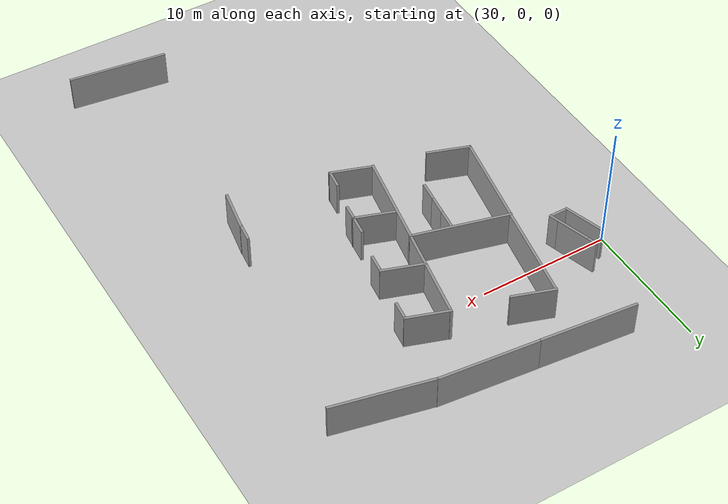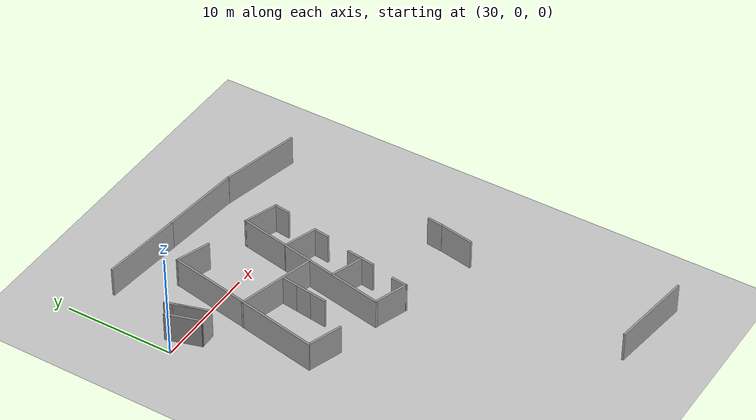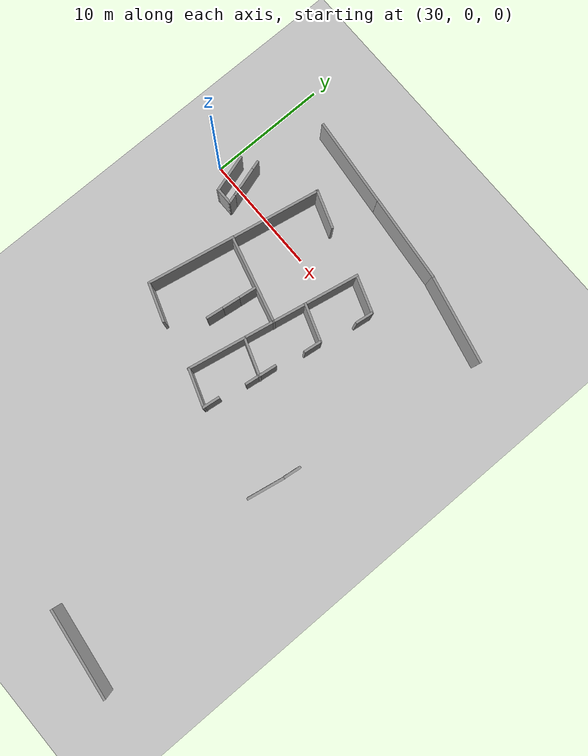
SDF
<sdf version="1.7">
 <world name="default">
  <model name="ground_plane">
   <static>1</static>
   <link name="link">
    <collision name="collision">
     <geometry><plane><normal>0 0 1</normal><size>100 100</size></plane></geometry>
     <surface>
      <contact><collide_bitmask>65535</collide_bitmask></contact>
      <friction><ode><mu>100</mu><mu2>50</mu2></ode></friction>
     </surface>
    </collision>
    <visual name="visual">
     <cast_shadows>0</cast_shadows>
     <geometry><plane><normal>0 0 1</normal><size>100 100</size></plane></geometry>
     <material>
      <script><uri>file://media/materials/scripts/gazebo.material</uri><name>Gazebo/Grey</name></script>
     </material>
    </visual>
   </link>
  </model>
  <model name="grey_wall_clone_3">
   <static>1</static>
   <link name="link">
    <pose>0 0 1.4 0 -0 0</pose>
    <collision name="collision"><geometry><box><size>7.5 0.2 2.8</size></box></geometry></collision>
    <visual name="visual">
     <cast_shadows>0</cast_shadows>
     <geometry><box><size>7.5 0.2 2.8</size></box></geometry>
     <material>
      <script>
       <uri>model://grey_wall/materials/scripts</uri>
       <uri>model://grey_wall/materials/textures</uri>
       <name>vrc/grey_wall</name>
      </script>
     </material>
    </visual>
   </link>
   <pose>36.9941 7.53296 0 0 0 -0.103387</pose>
  </model>
  <model name="grey_wall_1_clone_clone_1_clone_clone_0_clone_clone_6_clone_2_clone">
   <static>1</static>
   <link name="link">
    <pose>0 0 1.4 0 -0 0</pose>
    <collision name="collision"><geometry><box><size>7.5 0.2 2.8</size></box></geometry></collision>
    <visual name="visual">
     <cast_shadows>0</cast_shadows>
     <geometry><box><size>7.5 0.2 2.8</size></box></geometry>
     <material>
      <script>
       <uri>model://grey_wall/materials/scripts</uri>
       <uri>model://grey_wall/materials/textures</uri>
       <name>vrc/grey_wall</name>
      </script>
     </material>
    </visual>
   </link>
   <pose>52.2656 -31.6056 0 0 0 -0.130439</pose>
  </model>
  <model name="half_grey_wall_clone_clone_0_clone_clone_clone_clone_0_clone_2_clone_clone_0_clone_clone">
   <link name="link">
    <pose>0 0 1.4 0 -0 0</pose>
    <inertial>
     <mass>1</mass>
     <inertia><ixx>1</ixx><ixy>0</ixy><ixz>0</ixz><iyy>1</iyy><iyz>0</iyz><izz>1</izz></inertia>
    </inertial>
    <visual name="visual">
     <cast_shadows>0</cast_shadows>
     <geometry><box><size>3.3 0.2 2.8</size></box></geometry>
     <material>
      <script>
       <uri>model://grey_wall/materials/scripts</uri>
       <uri>model://grey_wall/materials/textures</uri>
       <name>vrc/grey_wall</name>
      </script>
      <shader type="pixel"><normal_map>__default__</normal_map></shader>
      <ambient>1 1 1 1</ambient>
      <diffuse>1 1 1 1</diffuse>
      <specular>0 0 0 1</specular>
      <emissive>0 0 0 1</emissive>
     </material>
    </visual>
    <collision name="collision">
     <geometry><box><size>3.3 0.2 2.8</size></box></geometry>
     <surface>
      <friction>
       <ode><mu>1</mu><mu2>1</mu2><fdir1>0 0 0</fdir1><slip1>0</slip1><slip2>0</slip2></ode>
       <torsional>
        <coefficient>1</coefficient>
        <patch_radius>0</patch_radius>
        <surface_radius>0</surface_radius>
        <use_patch_radius>1</use_patch_radius>
        <ode><slip>0</slip></ode>
       </torsional>
      </friction>
      <bounce><restitution_coefficient>0</restitution_coefficient><threshold>1e+06</threshold></bounce>
      <contact>
       <collide_without_contact>0</collide_without_contact>
       <collide_without_contact_bitmask>1</collide_without_contact_bitmask>
       <collide_bitmask>1</collide_bitmask>
       <ode>
        <soft_cfm>0</soft_cfm>
        <soft_erp>0.2</soft_erp>
        <kp>1e+13</kp>
        <kd>1</kd>
        <max_vel>0.01</max_vel>
        <min_depth>0</min_depth>
       </ode>
       <bullet>
        <split_impulse>1</split_impulse>
        <split_impulse_penetration_threshold>-0.01</split_impulse_penetration_threshold>
        <soft_cfm>0</soft_cfm>
        <soft_erp>0.2</soft_erp>
        <kp>1e+13</kp>
        <kd>1</kd>
       </bullet>
      </contact>
     </surface>
    </collision>
   </link>
   <static>1</static>
   <pose>31.6553 -0.22615 0 0 -0 1.86289</pose>
  </model>
  <model name="half_grey_wall_clone_clone_clone_0_clone_clone_0_clone_clone_0_clone_0_clone_11_clone_clone">
   <link name="link">
    <pose>0 0 1.4 0 -0 0</pose>
    <inertial>
     <mass>1</mass>
     <inertia><ixx>1</ixx><ixy>0</ixy><ixz>0</ixz><iyy>1</iyy><iyz>0</iyz><izz>1</izz></inertia>
    </inertial>
    <visual name="visual">
     <cast_shadows>0</cast_shadows>
     <geometry><box><size>1.5 0.2 2.8</size></box></geometry>
     <material>
      <script>
       <uri>model://grey_wall/materials/scripts</uri>
       <uri>model://grey_wall/materials/textures</uri>
       <name>vrc/grey_wall</name>
      </script>
      <shader type="pixel"><normal_map>__default__</normal_map></shader>
      <ambient>1 1 1 1</ambient>
      <diffuse>1 1 1 1</diffuse>
      <specular>0 0 0 1</specular>
      <emissive>0 0 0 1</emissive>
     </material>
    </visual>
    <collision name="collision">
     <geometry><box><size>1.5 0.2 2.8</size></box></geometry>
     <surface>
      <friction>
       <ode><mu>1</mu><mu2>1</mu2><fdir1>0 0 0</fdir1><slip1>0</slip1><slip2>0</slip2></ode>
       <torsional>
        <coefficient>1</coefficient>
        <patch_radius>0</patch_radius>
        <surface_radius>0</surface_radius>
        <use_patch_radius>1</use_patch_radius>
        <ode><slip>0</slip></ode>
       </torsional>
      </friction>
      <bounce><restitution_coefficient>0</restitution_coefficient><threshold>1e+06</threshold></bounce>
      <contact>
       <collide_without_contact>0</collide_without_contact>
       <collide_without_contact_bitmask>1</collide_without_contact_bitmask>
       <collide_bitmask>1</collide_bitmask>
       <ode>
        <soft_cfm>0</soft_cfm>
        <soft_erp>0.2</soft_erp>
        <kp>1e+13</kp>
        <kd>1</kd>
        <max_vel>0.01</max_vel>
        <min_depth>0</min_depth>
       </ode>
       <bullet>
        <split_impulse>1</split_impulse>
        <split_impulse_penetration_threshold>-0.01</split_impulse_penetration_threshold>
        <soft_cfm>0</soft_cfm>
        <soft_erp>0.2</soft_erp>
        <kp>1e+13</kp>
        <kd>1</kd>
       </bullet>
      </contact>
     </surface>
    </collision>
   </link>
   <static>1</static>
   <pose>32.7588 -1.69789 0 0 0 -3.13942</pose>
  </model>
  <model name="half_grey_wall_clone_clone_0_clone_clone_clone_clone_0_clone_2_clone_clone_0_clone_clone_0">
   <link name="link">
    <pose>0 0 1.4 0 -0 0</pose>
    <inertial>
     <mass>1</mass>
     <inertia><ixx>1</ixx><ixy>0</ixy><ixz>0</ixz><iyy>1</iyy><iyz>0</iyz><izz>1</izz></inertia>
    </inertial>
    <visual name="visual">
     <cast_shadows>0</cast_shadows>
     <geometry><box><size>3.3 0.2 2.8</size></box></geometry>
     <material>
      <script>
       <uri>model://grey_wall/materials/scripts</uri>
       <uri>model://grey_wall/materials/textures</uri>
       <name>vrc/grey_wall</name>
      </script>
      <shader type="pixel"><normal_map>__default__</normal_map></shader>
      <ambient>1 1 1 1</ambient>
      <diffuse>1 1 1 1</diffuse>
      <specular>0 0 0 1</specular>
      <emissive>0 0 0 1</emissive>
     </material>
    </visual>
    <collision name="collision">
     <geometry><box><size>3.3 0.2 2.8</size></box></geometry>
     <surface>
      <friction>
       <ode><mu>1</mu><mu2>1</mu2><fdir1>0 0 0</fdir1><slip1>0</slip1><slip2>0</slip2></ode>
       <torsional>
        <coefficient>1</coefficient>
        <patch_radius>0</patch_radius>
        <surface_radius>0</surface_radius>
        <use_patch_radius>1</use_patch_radius>
        <ode><slip>0</slip></ode>
       </torsional>
      </friction>
      <bounce><restitution_coefficient>0</restitution_coefficient><threshold>1e+06</threshold></bounce>
      <contact>
       <collide_without_contact>0</collide_without_contact>
       <collide_without_contact_bitmask>1</collide_without_contact_bitmask>
       <collide_bitmask>1</collide_bitmask>
       <ode>
        <soft_cfm>0</soft_cfm>
        <soft_erp>0.2</soft_erp>
        <kp>1e+13</kp>
        <kd>1</kd>
        <max_vel>0.01</max_vel>
        <min_depth>0</min_depth>
       </ode>
       <bullet>
        <split_impulse>1</split_impulse>
        <split_impulse_penetration_threshold>-0.01</split_impulse_penetration_threshold>
        <soft_cfm>0</soft_cfm>
        <soft_erp>0.2</soft_erp>
        <kp>1e+13</kp>
        <kd>1</kd>
       </bullet>
      </contact>
     </surface>
    </collision>
   </link>
   <static>1</static>
   <pose>32.9983 -0.18878 0 0 -0 1.86289</pose>
  </model>
  <model name="half_grey_wall_clone_clone_0_clone_clone_clone_clone_0_clone_2_clone_clone_0_clone_clone_0_clone">
   <link name="link">
    <pose>0 0 1.4 0 -0 0</pose>
    <inertial>
     <mass>1</mass>
     <inertia><ixx>1</ixx><ixy>0</ixy><ixz>0</ixz><iyy>1</iyy><iyz>0</iyz><izz>1</izz></inertia>
    </inertial>
    <visual name="visual">
     <cast_shadows>0</cast_shadows>
     <geometry><box><size>3.3 0.2 2.8</size></box></geometry>
     <material>
      <script>
       <uri>model://grey_wall/materials/scripts</uri>
       <uri>model://grey_wall/materials/textures</uri>
       <name>vrc/grey_wall</name>
      </script>
      <shader type="pixel"><normal_map>__default__</normal_map></shader>
      <ambient>1 1 1 1</ambient>
      <diffuse>1 1 1 1</diffuse>
      <specular>0 0 0 1</specular>
      <emissive>0 0 0 1</emissive>
     </material>
    </visual>
    <collision name="collision">
     <geometry><box><size>3.3 0.2 2.8</size></box></geometry>
     <surface>
      <friction>
       <ode><mu>1</mu><mu2>1</mu2><fdir1>0 0 0</fdir1><slip1>0</slip1><slip2>0</slip2></ode>
       <torsional>
        <coefficient>1</coefficient>
        <patch_radius>0</patch_radius>
        <surface_radius>0</surface_radius>
        <use_patch_radius>1</use_patch_radius>
        <ode><slip>0</slip></ode>
       </torsional>
      </friction>
      <bounce><restitution_coefficient>0</restitution_coefficient><threshold>1e+06</threshold></bounce>
      <contact>
       <collide_without_contact>0</collide_without_contact>
       <collide_without_contact_bitmask>1</collide_without_contact_bitmask>
       <collide_bitmask>1</collide_bitmask>
       <ode>
        <soft_cfm>0</soft_cfm>
        <soft_erp>0.2</soft_erp>
        <kp>1e+13</kp>
        <kd>1</kd>
        <max_vel>0.01</max_vel>
        <min_depth>0</min_depth>
       </ode>
       <bullet>
        <split_impulse>1</split_impulse>
        <split_impulse_penetration_threshold>-0.01</split_impulse_penetration_threshold>
        <soft_cfm>0</soft_cfm>
        <soft_erp>0.2</soft_erp>
        <kp>1e+13</kp>
        <kd>1</kd>
       </bullet>
      </contact>
     </surface>
    </collision>
   </link>
   <static>1</static>
   <pose>32.7831 0.549208 0 0 -0 1.86289</pose>
  </model>
  <model name="grey_wall_clone_3_clone">
   <static>1</static>
   <link name="link">
    <pose>0 0 1.4 0 -0 0</pose>
    <collision name="collision"><geometry><box><size>7.5 0.2 2.8</size></box></geometry></collision>
    <visual name="visual">
     <cast_shadows>0</cast_shadows>
     <geometry><box><size>7.5 0.2 2.8</size></box></geometry>
     <material>
      <script>
       <uri>model://grey_wall/materials/scripts</uri>
       <uri>model://grey_wall/materials/textures</uri>
       <name>vrc/grey_wall</name>
      </script>
     </material>
    </visual>
   </link>
   <pose>44.2979 6.78496 0 0 0 -0.103387</pose>
  </model>
  <model name="grey_wall_clone_3_clone_0_clone_1_clone_0">
   <static>1</static>
   <link name="link">
    <pose>0 0 1.4 0 -0 0</pose>
    <collision name="collision"><geometry><box><size>7.5 0.2 2.8</size></box></geometry></collision>
    <visual name="visual">
     <cast_shadows>0</cast_shadows>
     <geometry><box><size>7.5 0.2 2.8</size></box></geometry>
     <material>
      <script>
       <uri>model://grey_wall/materials/scripts</uri>
       <uri>model://grey_wall/materials/textures</uri>
       <name>vrc/grey_wall</name>
      </script>
     </material>
    </visual>
   </link>
   <pose>51.5916 5.56864 0 0 0 -0.221745</pose>
  </model>
  <model name="grey_wall_0_clone_clone_clone_0_clone_clone_2_clone_1_clone_2_clone_1">
   <static>1</static>
   <link name="link">
    <pose>0 0 1.4 0 -0 0</pose>
    <collision name="collision"><geometry><box><size>7.5 0.2 2.8</size></box></geometry></collision>
    <visual name="visual">
     <cast_shadows>0</cast_shadows>
     <geometry><box><size>7.5 0.2 2.8</size></box></geometry>
     <material>
      <script>
       <uri>model://grey_wall/materials/scripts</uri>
       <uri>model://grey_wall/materials/textures</uri>
       <name>vrc/grey_wall</name>
      </script>
     </material>
    </visual>
   </link>
   <pose>36.4342 0.405783 0 0 -0 1.38582</pose>
  </model>
  <model name="grey_wall_0_clone_clone_clone_0_clone_clone_2_clone_1_clone_2_clone_1_clone">
   <static>1</static>
   <link name="link">
    <pose>0 0 1.4 0 -0 0</pose>
    <collision name="collision"><geometry><box><size>7.5 0.2 2.8</size></box></geometry></collision>
    <visual name="visual">
     <cast_shadows>0</cast_shadows>
     <geometry><box><size>7.5 0.2 2.8</size></box></geometry>
     <material>
      <script>
       <uri>model://grey_wall/materials/scripts</uri>
       <uri>model://grey_wall/materials/textures</uri>
       <name>vrc/grey_wall</name>
      </script>
     </material>
    </visual>
   </link>
   <pose>35.0391 -6.87261 0 0 -0 1.38237</pose>
  </model>
  <model name="grey_wall_clone_3_clone_0_clone_1_clone_0_clone_clone_0">
   <static>1</static>
   <link name="link">
    <pose>0 0 1.4 0 -0 0</pose>
    <collision name="collision"><geometry><box><size>7.5 0.2 2.8</size></box></geometry></collision>
    <visual name="visual">
     <cast_shadows>0</cast_shadows>
     <geometry><box><size>7.5 0.2 2.8</size></box></geometry>
     <material>
      <script>
       <uri>model://grey_wall/materials/scripts</uri>
       <uri>model://grey_wall/materials/textures</uri>
       <name>vrc/grey_wall</name>
      </script>
     </material>
    </visual>
   </link>
   <pose>39.2484 -4.20958 0 0 0 -0.25602</pose>
  </model>
  <model name="half_grey_wall_clone_clone_0_clone_clone_clone_clone_0_clone_2_clone_clone_0_clone">
   <link name="link">
    <pose>0 0 1.4 0 -0 0</pose>
    <inertial>
     <mass>1</mass>
     <inertia><ixx>1</ixx><ixy>0</ixy><ixz>0</ixz><iyy>1</iyy><iyz>0</iyz><izz>1</izz></inertia>
    </inertial>
    <visual name="visual">
     <cast_shadows>0</cast_shadows>
     <geometry><box><size>3.3 0.2 2.8</size></box></geometry>
     <material>
      <script>
       <uri>model://grey_wall/materials/scripts</uri>
       <uri>model://grey_wall/materials/textures</uri>
       <name>vrc/grey_wall</name>
      </script>
      <shader type="pixel"><normal_map>__default__</normal_map></shader>
      <ambient>1 1 1 1</ambient>
      <diffuse>1 1 1 1</diffuse>
      <specular>0 0 0 1</specular>
      <emissive>0 0 0 1</emissive>
     </material>
    </visual>
    <collision name="collision">
     <geometry><box><size>3.3 0.2 2.8</size></box></geometry>
     <surface>
      <friction>
       <ode><mu>1</mu><mu2>1</mu2><fdir1>0 0 0</fdir1><slip1>0</slip1><slip2>0</slip2></ode>
       <torsional>
        <coefficient>1</coefficient>
        <patch_radius>0</patch_radius>
        <surface_radius>0</surface_radius>
        <use_patch_radius>1</use_patch_radius>
        <ode><slip>0</slip></ode>
       </torsional>
      </friction>
      <bounce><restitution_coefficient>0</restitution_coefficient><threshold>1e+06</threshold></bounce>
      <contact>
       <collide_without_contact>0</collide_without_contact>
       <collide_without_contact_bitmask>1</collide_without_contact_bitmask>
       <collide_bitmask>1</collide_bitmask>
       <ode>
        <soft_cfm>0</soft_cfm>
        <soft_erp>0.2</soft_erp>
        <kp>1e+13</kp>
        <kd>1</kd>
        <max_vel>0.01</max_vel>
        <min_depth>0</min_depth>
       </ode>
       <bullet>
        <split_impulse>1</split_impulse>
        <split_impulse_penetration_threshold>-0.01</split_impulse_penetration_threshold>
        <soft_cfm>0</soft_cfm>
        <soft_erp>0.2</soft_erp>
        <kp>1e+13</kp>
        <kd>1</kd>
       </bullet>
      </contact>
     </surface>
    </collision>
   </link>
   <static>1</static>
   <pose>38.5729 3.56946 -0 0 -0 2.80915</pose>
  </model>
  <model name="half_grey_wall_clone_clone_0_clone_clone_clone_clone_0_clone_2_clone_clone_0_clone_0">
   <link name="link">
    <pose>0 0 1.4 0 -0 0</pose>
    <inertial>
     <mass>1</mass>
     <inertia><ixx>1</ixx><ixy>0</ixy><ixz>0</ixz><iyy>1</iyy><iyz>0</iyz><izz>1</izz></inertia>
    </inertial>
    <visual name="visual">
     <cast_shadows>0</cast_shadows>
     <geometry><box><size>3.3 0.2 2.8</size></box></geometry>
     <material>
      <script>
       <uri>model://grey_wall/materials/scripts</uri>
       <uri>model://grey_wall/materials/textures</uri>
       <name>vrc/grey_wall</name>
      </script>
      <shader type="pixel"><normal_map>__default__</normal_map></shader>
      <ambient>1 1 1 1</ambient>
      <diffuse>1 1 1 1</diffuse>
      <specular>0 0 0 1</specular>
      <emissive>0 0 0 1</emissive>
     </material>
    </visual>
    <collision name="collision">
     <geometry><box><size>3.3 0.2 2.8</size></box></geometry>
     <surface>
      <friction>
       <ode><mu>1</mu><mu2>1</mu2><fdir1>0 0 0</fdir1><slip1>0</slip1><slip2>0</slip2></ode>
       <torsional>
        <coefficient>1</coefficient>
        <patch_radius>0</patch_radius>
        <surface_radius>0</surface_radius>
        <use_patch_radius>1</use_patch_radius>
        <ode><slip>0</slip></ode>
       </torsional>
      </friction>
      <bounce><restitution_coefficient>0</restitution_coefficient><threshold>1e+06</threshold></bounce>
      <contact>
       <collide_without_contact>0</collide_without_contact>
       <collide_without_contact_bitmask>1</collide_without_contact_bitmask>
       <collide_bitmask>1</collide_bitmask>
       <ode>
        <soft_cfm>0</soft_cfm>
        <soft_erp>0.2</soft_erp>
        <kp>1e+13</kp>
        <kd>1</kd>
        <max_vel>0.01</max_vel>
        <min_depth>0</min_depth>
       </ode>
       <bullet>
        <split_impulse>1</split_impulse>
        <split_impulse_penetration_threshold>-0.01</split_impulse_penetration_threshold>
        <soft_cfm>0</soft_cfm>
        <soft_erp>0.2</soft_erp>
        <kp>1e+13</kp>
        <kd>1</kd>
       </bullet>
      </contact>
     </surface>
    </collision>
   </link>
   <static>1</static>
   <pose>35.8668 -10.9804 -0 0 -0 2.80915</pose>
  </model>
  <model name="grey_wall_0_clone_clone_clone_0_clone_clone_2_clone_1_clone_2_clone_1_clone_0">
   <static>1</static>
   <link name="link">
    <pose>0 0 1.4 0 -0 0</pose>
    <collision name="collision"><geometry><box><size>7.5 0.2 2.8</size></box></geometry></collision>
    <visual name="visual">
     <cast_shadows>0</cast_shadows>
     <geometry><box><size>7.5 0.2 2.8</size></box></geometry>
     <material>
      <script>
       <uri>model://grey_wall/materials/scripts</uri>
       <uri>model://grey_wall/materials/textures</uri>
       <name>vrc/grey_wall</name>
      </script>
     </material>
    </visual>
   </link>
   <pose>43.4529 -1.55068 0 0 -0 1.38237</pose>
  </model>
  <model name="grey_wall_0_clone_clone_clone_0_clone_clone_2_clone_1_clone_2_clone_1_clone_clone">
   <static>1</static>
   <link name="link">
    <pose>0 0 1.4 0 -0 0</pose>
    <collision name="collision"><geometry><box><size>7.5 0.2 2.8</size></box></geometry></collision>
    <visual name="visual">
     <cast_shadows>0</cast_shadows>
     <geometry><box><size>7.5 0.2 2.8</size></box></geometry>
     <material>
      <script>
       <uri>model://grey_wall/materials/scripts</uri>
       <uri>model://grey_wall/materials/textures</uri>
       <name>vrc/grey_wall</name>
      </script>
     </material>
    </visual>
   </link>
   <pose>42.0729 -8.75312 0 0 -0 1.38237</pose>
  </model>
  <model name="half_grey_wall_clone_clone_0_clone_clone_clone_clone_0_clone_2_clone_clone_0_clone_clone_1">
   <link name="link">
    <pose>0 0 1.4 0 -0 0</pose>
    <inertial>
     <mass>1</mass>
     <inertia><ixx>1</ixx><ixy>0</ixy><ixz>0</ixz><iyy>1</iyy><iyz>0</iyz><izz>1</izz></inertia>
    </inertial>
    <visual name="visual">
     <cast_shadows>0</cast_shadows>
     <geometry><box><size>3.3 0.2 2.8</size></box></geometry>
     <material>
      <script>
       <uri>model://grey_wall/materials/scripts</uri>
       <uri>model://grey_wall/materials/textures</uri>
       <name>vrc/grey_wall</name>
      </script>
      <shader type="pixel"><normal_map>__default__</normal_map></shader>
      <ambient>1 1 1 1</ambient>
      <diffuse>1 1 1 1</diffuse>
      <specular>0 0 0 1</specular>
      <emissive>0 0 0 1</emissive>
     </material>
    </visual>
    <collision name="collision">
     <geometry><box><size>3.3 0.2 2.8</size></box></geometry>
     <surface>
      <friction>
       <ode><mu>1</mu><mu2>1</mu2><fdir1>0 0 0</fdir1><slip1>0</slip1><slip2>0</slip2></ode>
       <torsional>
        <coefficient>1</coefficient>
        <patch_radius>0</patch_radius>
        <surface_radius>0</surface_radius>
        <use_patch_radius>1</use_patch_radius>
        <ode><slip>0</slip></ode>
       </torsional>
      </friction>
      <bounce><restitution_coefficient>0</restitution_coefficient><threshold>1e+06</threshold></bounce>
      <contact>
       <collide_without_contact>0</collide_without_contact>
       <collide_without_contact_bitmask>1</collide_without_contact_bitmask>
       <collide_bitmask>1</collide_bitmask>
       <ode>
        <soft_cfm>0</soft_cfm>
        <soft_erp>0.2</soft_erp>
        <kp>1e+13</kp>
        <kd>1</kd>
        <max_vel>0.01</max_vel>
        <min_depth>0</min_depth>
       </ode>
       <bullet>
        <split_impulse>1</split_impulse>
        <split_impulse_penetration_threshold>-0.01</split_impulse_penetration_threshold>
        <soft_cfm>0</soft_cfm>
        <soft_erp>0.2</soft_erp>
        <kp>1e+13</kp>
        <kd>1</kd>
       </bullet>
      </contact>
     </surface>
    </collision>
   </link>
   <static>1</static>
   <pose>45.6067 1.51111 -0 0 -0 2.80915</pose>
  </model>
  <model name="half_grey_wall_clone_clone_0_clone_clone_clone_clone_0_clone_2_clone_clone_0_clone_clone_1_clone">
   <link name="link">
    <pose>0 0 1.4 0 -0 0</pose>
    <inertial>
     <mass>1</mass>
     <inertia><ixx>1</ixx><ixy>0</ixy><ixz>0</ixz><iyy>1</iyy><iyz>0</iyz><izz>1</izz></inertia>
    </inertial>
    <visual name="visual">
     <cast_shadows>0</cast_shadows>
     <geometry><box><size>3.3 0.2 2.8</size></box></geometry>
     <material>
      <script>
       <uri>model://grey_wall/materials/scripts</uri>
       <uri>model://grey_wall/materials/textures</uri>
       <name>vrc/grey_wall</name>
      </script>
      <shader type="pixel"><normal_map>__default__</normal_map></shader>
      <ambient>1 1 1 1</ambient>
      <diffuse>1 1 1 1</diffuse>
      <specular>0 0 0 1</specular>
      <emissive>0 0 0 1</emissive>
     </material>
    </visual>
    <collision name="collision">
     <geometry><box><size>3.3 0.2 2.8</size></box></geometry>
     <surface>
      <friction>
       <ode><mu>1</mu><mu2>1</mu2><fdir1>0 0 0</fdir1><slip1>0</slip1><slip2>0</slip2></ode>
       <torsional>
        <coefficient>1</coefficient>
        <patch_radius>0</patch_radius>
        <surface_radius>0</surface_radius>
        <use_patch_radius>1</use_patch_radius>
        <ode><slip>0</slip></ode>
       </torsional>
      </friction>
      <bounce><restitution_coefficient>0</restitution_coefficient><threshold>1e+06</threshold></bounce>
      <contact>
       <collide_without_contact>0</collide_without_contact>
       <collide_without_contact_bitmask>1</collide_without_contact_bitmask>
       <collide_bitmask>1</collide_bitmask>
       <ode>
        <soft_cfm>0</soft_cfm>
        <soft_erp>0.2</soft_erp>
        <kp>1e+13</kp>
        <kd>1</kd>
        <max_vel>0.01</max_vel>
        <min_depth>0</min_depth>
       </ode>
       <bullet>
        <split_impulse>1</split_impulse>
        <split_impulse_penetration_threshold>-0.01</split_impulse_penetration_threshold>
        <soft_cfm>0</soft_cfm>
        <soft_erp>0.2</soft_erp>
        <kp>1e+13</kp>
        <kd>1</kd>
       </bullet>
      </contact>
     </surface>
    </collision>
   </link>
   <static>1</static>
   <pose>42.8987 -12.8355 -0 0 -0 2.80915</pose>
  </model>
  <model name="half_grey_wall_clone_clone_0_clone_clone_clone_clone_0_clone_2_clone_clone_0_clone_clone_1_clone_1">
   <link name="link">
    <pose>0 0 1.4 0 -0 0</pose>
    <inertial>
     <mass>1</mass>
     <inertia><ixx>1</ixx><ixy>0</ixy><ixz>0</ixz><iyy>1</iyy><iyz>0</iyz><izz>1</izz></inertia>
    </inertial>
    <visual name="visual">
     <cast_shadows>0</cast_shadows>
     <geometry><box><size>3.3 0.2 2.8</size></box></geometry>
     <material>
      <script>
       <uri>model://grey_wall/materials/scripts</uri>
       <uri>model://grey_wall/materials/textures</uri>
       <name>vrc/grey_wall</name>
      </script>
      <shader type="pixel"><normal_map>__default__</normal_map></shader>
      <ambient>1 1 1 1</ambient>
      <diffuse>1 1 1 1</diffuse>
      <specular>0 0 0 1</specular>
      <emissive>0 0 0 1</emissive>
     </material>
    </visual>
    <collision name="collision">
     <geometry><box><size>3.3 0.2 2.8</size></box></geometry>
     <surface>
      <friction>
       <ode><mu>1</mu><mu2>1</mu2><fdir1>0 0 0</fdir1><slip1>0</slip1><slip2>0</slip2></ode>
       <torsional>
        <coefficient>1</coefficient>
        <patch_radius>0</patch_radius>
        <surface_radius>0</surface_radius>
        <use_patch_radius>1</use_patch_radius>
        <ode><slip>0</slip></ode>
       </torsional>
      </friction>
      <bounce><restitution_coefficient>0</restitution_coefficient><threshold>1e+06</threshold></bounce>
      <contact>
       <collide_without_contact>0</collide_without_contact>
       <collide_without_contact_bitmask>1</collide_without_contact_bitmask>
       <collide_bitmask>1</collide_bitmask>
       <ode>
        <soft_cfm>0</soft_cfm>
        <soft_erp>0.2</soft_erp>
        <kp>1e+13</kp>
        <kd>1</kd>
        <max_vel>0.01</max_vel>
        <min_depth>0</min_depth>
       </ode>
       <bullet>
        <split_impulse>1</split_impulse>
        <split_impulse_penetration_threshold>-0.01</split_impulse_penetration_threshold>
        <soft_cfm>0</soft_cfm>
        <soft_erp>0.2</soft_erp>
        <kp>1e+13</kp>
        <kd>1</kd>
       </bullet>
      </contact>
     </surface>
    </collision>
   </link>
   <static>1</static>
   <pose>44.7571 -2.91121 -0 0 -0 2.80915</pose>
  </model>
  <model name="half_grey_wall_clone_clone_0_clone_clone_clone_clone_0_clone_2_clone_clone_0_clone_clone_1_clone_0">
   <link name="link">
    <pose>0 0 1.4 0 -0 0</pose>
    <inertial>
     <mass>1</mass>
     <inertia><ixx>1</ixx><ixy>0</ixy><ixz>0</ixz><iyy>1</iyy><iyz>0</iyz><izz>1</izz></inertia>
    </inertial>
    <visual name="visual">
     <cast_shadows>0</cast_shadows>
     <geometry><box><size>3.3 0.2 2.8</size></box></geometry>
     <material>
      <script>
       <uri>model://grey_wall/materials/scripts</uri>
       <uri>model://grey_wall/materials/textures</uri>
       <name>vrc/grey_wall</name>
      </script>
      <shader type="pixel"><normal_map>__default__</normal_map></shader>
      <ambient>1 1 1 1</ambient>
      <diffuse>1 1 1 1</diffuse>
      <specular>0 0 0 1</specular>
      <emissive>0 0 0 1</emissive>
     </material>
    </visual>
    <collision name="collision">
     <geometry><box><size>3.3 0.2 2.8</size></box></geometry>
     <surface>
      <friction>
       <ode><mu>1</mu><mu2>1</mu2><fdir1>0 0 0</fdir1><slip1>0</slip1><slip2>0</slip2></ode>
       <torsional>
        <coefficient>1</coefficient>
        <patch_radius>0</patch_radius>
        <surface_radius>0</surface_radius>
        <use_patch_radius>1</use_patch_radius>
        <ode><slip>0</slip></ode>
       </torsional>
      </friction>
      <bounce><restitution_coefficient>0</restitution_coefficient><threshold>1e+06</threshold></bounce>
      <contact>
       <collide_without_contact>0</collide_without_contact>
       <collide_without_contact_bitmask>1</collide_without_contact_bitmask>
       <collide_bitmask>1</collide_bitmask>
       <ode>
        <soft_cfm>0</soft_cfm>
        <soft_erp>0.2</soft_erp>
        <kp>1e+13</kp>
        <kd>1</kd>
        <max_vel>0.01</max_vel>
        <min_depth>0</min_depth>
       </ode>
       <bullet>
        <split_impulse>1</split_impulse>
        <split_impulse_penetration_threshold>-0.01</split_impulse_penetration_threshold>
        <soft_cfm>0</soft_cfm>
        <soft_erp>0.2</soft_erp>
        <kp>1e+13</kp>
        <kd>1</kd>
       </bullet>
      </contact>
     </surface>
    </collision>
   </link>
   <static>1</static>
   <pose>43.7891 -8.1196 -0 0 -0 2.80915</pose>
  </model>
  <model name="half_grey_wall_clone_clone_clone_0_clone_clone_0_clone_clone_0_clone_0_clone_13_clone_clone_0_clone">
   <link name="link">
    <pose>0 0 1.4 0 -0 0</pose>
    <inertial>
     <mass>1</mass>
     <inertia><ixx>1</ixx><ixy>0</ixy><ixz>0</ixz><iyy>1</iyy><iyz>0</iyz><izz>1</izz></inertia>
    </inertial>
    <visual name="visual">
     <cast_shadows>0</cast_shadows>
     <geometry><box><size>1.5 0.2 2.8</size></box></geometry>
     <material>
      <script>
       <uri>model://grey_wall/materials/scripts</uri>
       <uri>model://grey_wall/materials/textures</uri>
       <name>vrc/grey_wall</name>
      </script>
      <shader type="pixel"><normal_map>__default__</normal_map></shader>
      <ambient>1 1 1 1</ambient>
      <diffuse>1 1 1 1</diffuse>
      <specular>0 0 0 1</specular>
      <emissive>0 0 0 1</emissive>
     </material>
    </visual>
    <collision name="collision">
     <geometry><box><size>1.5 0.2 2.8</size></box></geometry>
     <surface>
      <friction>
       <ode><mu>1</mu><mu2>1</mu2><fdir1>0 0 0</fdir1><slip1>0</slip1><slip2>0</slip2></ode>
       <torsional>
        <coefficient>1</coefficient>
        <patch_radius>0</patch_radius>
        <surface_radius>0</surface_radius>
        <use_patch_radius>1</use_patch_radius>
        <ode><slip>0</slip></ode>
       </torsional>
      </friction>
      <bounce><restitution_coefficient>0</restitution_coefficient><threshold>1e+06</threshold></bounce>
      <contact>
       <collide_without_contact>0</collide_without_contact>
       <collide_without_contact_bitmask>1</collide_without_contact_bitmask>
       <collide_bitmask>1</collide_bitmask>
       <ode>
        <soft_cfm>0</soft_cfm>
        <soft_erp>0.2</soft_erp>
        <kp>1e+13</kp>
        <kd>1</kd>
        <max_vel>0.01</max_vel>
        <min_depth>0</min_depth>
       </ode>
       <bullet>
        <split_impulse>1</split_impulse>
        <split_impulse_penetration_threshold>-0.01</split_impulse_penetration_threshold>
        <soft_cfm>0</soft_cfm>
        <soft_erp>0.2</soft_erp>
        <kp>1e+13</kp>
        <kd>1</kd>
       </bullet>
      </contact>
     </surface>
    </collision>
   </link>
   <static>1</static>
   <pose>46.976 0.302503 0 0 -0 1.43779</pose>
  </model>
  <model name="half_grey_wall_clone_clone_clone_0_clone_clone_0_clone_clone_0_clone_0_clone_13_clone_clone_0_clone_clone">
   <link name="link">
    <pose>0 0 1.4 0 -0 0</pose>
    <inertial>
     <mass>1</mass>
     <inertia><ixx>1</ixx><ixy>0</ixy><ixz>0</ixz><iyy>1</iyy><iyz>0</iyz><izz>1</izz></inertia>
    </inertial>
    <visual name="visual">
     <cast_shadows>0</cast_shadows>
     <geometry><box><size>1.5 0.2 2.8</size></box></geometry>
     <material>
      <script>
       <uri>model://grey_wall/materials/scripts</uri>
       <uri>model://grey_wall/materials/textures</uri>
       <name>vrc/grey_wall</name>
      </script>
      <shader type="pixel"><normal_map>__default__</normal_map></shader>
      <ambient>1 1 1 1</ambient>
      <diffuse>1 1 1 1</diffuse>
      <specular>0 0 0 1</specular>
      <emissive>0 0 0 1</emissive>
     </material>
    </visual>
    <collision name="collision">
     <geometry><box><size>1.5 0.2 2.8</size></box></geometry>
     <surface>
      <friction>
       <ode><mu>1</mu><mu2>1</mu2><fdir1>0 0 0</fdir1><slip1>0</slip1><slip2>0</slip2></ode>
       <torsional>
        <coefficient>1</coefficient>
        <patch_radius>0</patch_radius>
        <surface_radius>0</surface_radius>
        <use_patch_radius>1</use_patch_radius>
        <ode><slip>0</slip></ode>
       </torsional>
      </friction>
      <bounce><restitution_coefficient>0</restitution_coefficient><threshold>1e+06</threshold></bounce>
      <contact>
       <collide_without_contact>0</collide_without_contact>
       <collide_without_contact_bitmask>1</collide_without_contact_bitmask>
       <collide_bitmask>1</collide_bitmask>
       <ode>
        <soft_cfm>0</soft_cfm>
        <soft_erp>0.2</soft_erp>
        <kp>1e+13</kp>
        <kd>1</kd>
        <max_vel>0.01</max_vel>
        <min_depth>0</min_depth>
       </ode>
       <bullet>
        <split_impulse>1</split_impulse>
        <split_impulse_penetration_threshold>-0.01</split_impulse_penetration_threshold>
        <soft_cfm>0</soft_cfm>
        <soft_erp>0.2</soft_erp>
        <kp>1e+13</kp>
        <kd>1</kd>
       </bullet>
      </contact>
     </surface>
    </collision>
   </link>
   <static>1</static>
   <pose>46.1329 -4.12229 0 0 -0 1.4396</pose>
  </model>
  <model name="half_grey_wall_clone_clone_clone_0_clone_clone_0_clone_clone_0_clone_0_clone_13_clone_clone_0_clone_clone_0">
   <link name="link">
    <pose>0 0 1.4 0 -0 0</pose>
    <inertial>
     <mass>1</mass>
     <inertia><ixx>1</ixx><ixy>0</ixy><ixz>0</ixz><iyy>1</iyy><iyz>0</iyz><izz>1</izz></inertia>
    </inertial>
    <visual name="visual">
     <cast_shadows>0</cast_shadows>
     <geometry><box><size>1.5 0.2 2.8</size></box></geometry>
     <material>
      <script>
       <uri>model://grey_wall/materials/scripts</uri>
       <uri>model://grey_wall/materials/textures</uri>
       <name>vrc/grey_wall</name>
      </script>
      <shader type="pixel"><normal_map>__default__</normal_map></shader>
      <ambient>1 1 1 1</ambient>
      <diffuse>1 1 1 1</diffuse>
      <specular>0 0 0 1</specular>
      <emissive>0 0 0 1</emissive>
     </material>
    </visual>
    <collision name="collision">
     <geometry><box><size>1.5 0.2 2.8</size></box></geometry>
     <surface>
      <friction>
       <ode><mu>1</mu><mu2>1</mu2><fdir1>0 0 0</fdir1><slip1>0</slip1><slip2>0</slip2></ode>
       <torsional>
        <coefficient>1</coefficient>
        <patch_radius>0</patch_radius>
        <surface_radius>0</surface_radius>
        <use_patch_radius>1</use_patch_radius>
        <ode><slip>0</slip></ode>
       </torsional>
      </friction>
      <bounce><restitution_coefficient>0</restitution_coefficient><threshold>1e+06</threshold></bounce>
      <contact>
       <collide_without_contact>0</collide_without_contact>
       <collide_without_contact_bitmask>1</collide_without_contact_bitmask>
       <collide_bitmask>1</collide_bitmask>
       <ode>
        <soft_cfm>0</soft_cfm>
        <soft_erp>0.2</soft_erp>
        <kp>1e+13</kp>
        <kd>1</kd>
        <max_vel>0.01</max_vel>
        <min_depth>0</min_depth>
       </ode>
       <bullet>
        <split_impulse>1</split_impulse>
        <split_impulse_penetration_threshold>-0.01</split_impulse_penetration_threshold>
        <soft_cfm>0</soft_cfm>
        <soft_erp>0.2</soft_erp>
        <kp>1e+13</kp>
        <kd>1</kd>
       </bullet>
      </contact>
     </surface>
    </collision>
   </link>
   <static>1</static>
   <pose>45.3314 -7.87837 0 0 -0 1.4396</pose>
  </model>
  <model name="half_grey_wall_clone_clone_clone_0_clone_clone_0_clone_clone_0_clone_0_clone_13_clone_clone_0_clone_clone_1">
   <link name="link">
    <pose>0 0 1.4 0 -0 0</pose>
    <inertial>
     <mass>1</mass>
     <inertia><ixx>1</ixx><ixy>0</ixy><ixz>0</ixz><iyy>1</iyy><iyz>0</iyz><izz>1</izz></inertia>
    </inertial>
    <visual name="visual">
     <cast_shadows>0</cast_shadows>
     <geometry><box><size>1.5 0.2 2.8</size></box></geometry>
     <material>
      <script>
       <uri>model://grey_wall/materials/scripts</uri>
       <uri>model://grey_wall/materials/textures</uri>
       <name>vrc/grey_wall</name>
      </script>
      <shader type="pixel"><normal_map>__default__</normal_map></shader>
      <ambient>1 1 1 1</ambient>
      <diffuse>1 1 1 1</diffuse>
      <specular>0 0 0 1</specular>
      <emissive>0 0 0 1</emissive>
     </material>
    </visual>
    <collision name="collision">
     <geometry><box><size>1.5 0.2 2.8</size></box></geometry>
     <surface>
      <friction>
       <ode><mu>1</mu><mu2>1</mu2><fdir1>0 0 0</fdir1><slip1>0</slip1><slip2>0</slip2></ode>
       <torsional>
        <coefficient>1</coefficient>
        <patch_radius>0</patch_radius>
        <surface_radius>0</surface_radius>
        <use_patch_radius>1</use_patch_radius>
        <ode><slip>0</slip></ode>
       </torsional>
      </friction>
      <bounce><restitution_coefficient>0</restitution_coefficient><threshold>1e+06</threshold></bounce>
      <contact>
       <collide_without_contact>0</collide_without_contact>
       <collide_without_contact_bitmask>1</collide_without_contact_bitmask>
       <collide_bitmask>1</collide_bitmask>
       <ode>
        <soft_cfm>0</soft_cfm>
        <soft_erp>0.2</soft_erp>
        <kp>1e+13</kp>
        <kd>1</kd>
        <max_vel>0.01</max_vel>
        <min_depth>0</min_depth>
       </ode>
       <bullet>
        <split_impulse>1</split_impulse>
        <split_impulse_penetration_threshold>-0.01</split_impulse_penetration_threshold>
        <soft_cfm>0</soft_cfm>
        <soft_erp>0.2</soft_erp>
        <kp>1e+13</kp>
        <kd>1</kd>
       </bullet>
      </contact>
     </surface>
    </collision>
   </link>
   <static>1</static>
   <pose>45.1597 -9.08379 0 0 -0 1.4396</pose>
  </model>
  <model name="half_grey_wall_clone_clone_clone_0_clone_clone_0_clone_clone_0_clone_0_clone_13_clone_clone_0_clone_clone_2">
   <link name="link">
    <pose>0 0 1.4 0 -0 0</pose>
    <inertial>
     <mass>1</mass>
     <inertia><ixx>1</ixx><ixy>0</ixy><ixz>0</ixz><iyy>1</iyy><iyz>0</iyz><izz>1</izz></inertia>
    </inertial>
    <visual name="visual">
     <cast_shadows>0</cast_shadows>
     <geometry><box><size>1.5 0.2 2.8</size></box></geometry>
     <material>
      <script>
       <uri>model://grey_wall/materials/scripts</uri>
       <uri>model://grey_wall/materials/textures</uri>
       <name>vrc/grey_wall</name>
      </script>
      <shader type="pixel"><normal_map>__default__</normal_map></shader>
      <ambient>1 1 1 1</ambient>
      <diffuse>1 1 1 1</diffuse>
      <specular>0 0 0 1</specular>
      <emissive>0 0 0 1</emissive>
     </material>
    </visual>
    <collision name="collision">
     <geometry><box><size>1.5 0.2 2.8</size></box></geometry>
     <surface>
      <friction>
       <ode><mu>1</mu><mu2>1</mu2><fdir1>0 0 0</fdir1><slip1>0</slip1><slip2>0</slip2></ode>
       <torsional>
        <coefficient>1</coefficient>
        <patch_radius>0</patch_radius>
        <surface_radius>0</surface_radius>
        <use_patch_radius>1</use_patch_radius>
        <ode><slip>0</slip></ode>
       </torsional>
      </friction>
      <bounce><restitution_coefficient>0</restitution_coefficient><threshold>1e+06</threshold></bounce>
      <contact>
       <collide_without_contact>0</collide_without_contact>
       <collide_without_contact_bitmask>1</collide_without_contact_bitmask>
       <collide_bitmask>1</collide_bitmask>
       <ode>
        <soft_cfm>0</soft_cfm>
        <soft_erp>0.2</soft_erp>
        <kp>1e+13</kp>
        <kd>1</kd>
        <max_vel>0.01</max_vel>
        <min_depth>0</min_depth>
       </ode>
       <bullet>
        <split_impulse>1</split_impulse>
        <split_impulse_penetration_threshold>-0.01</split_impulse_penetration_threshold>
        <soft_cfm>0</soft_cfm>
        <soft_erp>0.2</soft_erp>
        <kp>1e+13</kp>
        <kd>1</kd>
       </bullet>
      </contact>
     </surface>
    </collision>
   </link>
   <static>1</static>
   <pose>44.4388 -12.6816 0 0 -0 1.4396</pose>
  </model>
  <model name="half_grey_wall_clone_clone_clone_0_clone_clone_0_clone_clone_0_clone_0_clone_13_clone_clone_0_clone_clone_0_clone">
   <link name="link">
    <pose>0 0 1.4 0 -0 0</pose>
    <inertial>
     <mass>1</mass>
     <inertia><ixx>1</ixx><ixy>0</ixy><ixz>0</ixz><iyy>1</iyy><iyz>0</iyz><izz>1</izz></inertia>
    </inertial>
    <visual name="visual">
     <cast_shadows>0</cast_shadows>
     <geometry><box><size>1.5 0.2 2.8</size></box></geometry>
     <material>
      <script>
       <uri>model://grey_wall/materials/scripts</uri>
       <uri>model://grey_wall/materials/textures</uri>
       <name>vrc/grey_wall</name>
      </script>
      <shader type="pixel"><normal_map>__default__</normal_map></shader>
      <ambient>1 1 1 1</ambient>
      <diffuse>1 1 1 1</diffuse>
      <specular>0 0 0 1</specular>
      <emissive>0 0 0 1</emissive>
     </material>
    </visual>
    <collision name="collision">
     <geometry><box><size>1.5 0.2 2.8</size></box></geometry>
     <surface>
      <friction>
       <ode><mu>1</mu><mu2>1</mu2><fdir1>0 0 0</fdir1><slip1>0</slip1><slip2>0</slip2></ode>
       <torsional>
        <coefficient>1</coefficient>
        <patch_radius>0</patch_radius>
        <surface_radius>0</surface_radius>
        <use_patch_radius>1</use_patch_radius>
        <ode><slip>0</slip></ode>
       </torsional>
      </friction>
      <bounce><restitution_coefficient>0</restitution_coefficient><threshold>1e+06</threshold></bounce>
      <contact>
       <collide_without_contact>0</collide_without_contact>
       <collide_without_contact_bitmask>1</collide_without_contact_bitmask>
       <collide_bitmask>1</collide_bitmask>
       <ode>
        <soft_cfm>0</soft_cfm>
        <soft_erp>0.2</soft_erp>
        <kp>1e+13</kp>
        <kd>1</kd>
        <max_vel>0.01</max_vel>
        <min_depth>0</min_depth>
       </ode>
       <bullet>
        <split_impulse>1</split_impulse>
        <split_impulse_penetration_threshold>-0.01</split_impulse_penetration_threshold>
        <soft_cfm>0</soft_cfm>
        <soft_erp>0.2</soft_erp>
        <kp>1e+13</kp>
        <kd>1</kd>
       </bullet>
      </contact>
     </surface>
    </collision>
   </link>
   <static>1</static>
   <pose>39.7696 -5.20035 0 0 -0 1.4396</pose>
  </model>
  <model name="half_grey_wall_clone_clone_clone_0_clone_clone_0_clone_clone_0_clone_0_clone_13_clone_clone_0_clone_clone_0_clone_0">
   <link name="link">
    <pose>0 0 1.4 0 -0 0</pose>
    <inertial>
     <mass>1</mass>
     <inertia><ixx>1</ixx><ixy>0</ixy><ixz>0</ixz><iyy>1</iyy><iyz>0</iyz><izz>1</izz></inertia>
    </inertial>
    <visual name="visual">
     <cast_shadows>0</cast_shadows>
     <geometry><box><size>1.5 0.2 2.8</size></box></geometry>
     <material>
      <script>
       <uri>model://grey_wall/materials/scripts</uri>
       <uri>model://grey_wall/materials/textures</uri>
       <name>vrc/grey_wall</name>
      </script>
      <shader type="pixel"><normal_map>__default__</normal_map></shader>
      <ambient>1 1 1 1</ambient>
      <diffuse>1 1 1 1</diffuse>
      <specular>0 0 0 1</specular>
      <emissive>0 0 0 1</emissive>
     </material>
    </visual>
    <collision name="collision">
     <geometry><box><size>1.5 0.2 2.8</size></box></geometry>
     <surface>
      <friction>
       <ode><mu>1</mu><mu2>1</mu2><fdir1>0 0 0</fdir1><slip1>0</slip1><slip2>0</slip2></ode>
       <torsional>
        <coefficient>1</coefficient>
        <patch_radius>0</patch_radius>
        <surface_radius>0</surface_radius>
        <use_patch_radius>1</use_patch_radius>
        <ode><slip>0</slip></ode>
       </torsional>
      </friction>
      <bounce><restitution_coefficient>0</restitution_coefficient><threshold>1e+06</threshold></bounce>
      <contact>
       <collide_without_contact>0</collide_without_contact>
       <collide_without_contact_bitmask>1</collide_without_contact_bitmask>
       <collide_bitmask>1</collide_bitmask>
       <ode>
        <soft_cfm>0</soft_cfm>
        <soft_erp>0.2</soft_erp>
        <kp>1e+13</kp>
        <kd>1</kd>
        <max_vel>0.01</max_vel>
        <min_depth>0</min_depth>
       </ode>
       <bullet>
        <split_impulse>1</split_impulse>
        <split_impulse_penetration_threshold>-0.01</split_impulse_penetration_threshold>
        <soft_cfm>0</soft_cfm>
        <soft_erp>0.2</soft_erp>
        <kp>1e+13</kp>
        <kd>1</kd>
       </bullet>
      </contact>
     </surface>
    </collision>
   </link>
   <static>1</static>
   <pose>39.5765 -6.65427 0 0 -0 1.4396</pose>
  </model>
  <model name="half_grey_wall_clone_clone_clone_0_clone_clone_0_clone_clone_0_clone_0_clone_13_clone_clone_0_clone_clone_0_clone_1">
   <link name="link">
    <pose>0 0 1.4 0 -0 0</pose>
    <inertial>
     <mass>1</mass>
     <inertia><ixx>1</ixx><ixy>0</ixy><ixz>0</ixz><iyy>1</iyy><iyz>0</iyz><izz>1</izz></inertia>
    </inertial>
    <visual name="visual">
     <cast_shadows>0</cast_shadows>
     <geometry><box><size>1.5 0.2 2.8</size></box></geometry>
     <material>
      <script>
       <uri>model://grey_wall/materials/scripts</uri>
       <uri>model://grey_wall/materials/textures</uri>
       <name>vrc/grey_wall</name>
      </script>
      <shader type="pixel"><normal_map>__default__</normal_map></shader>
      <ambient>1 1 1 1</ambient>
      <diffuse>1 1 1 1</diffuse>
      <specular>0 0 0 1</specular>
      <emissive>0 0 0 1</emissive>
     </material>
    </visual>
    <collision name="collision">
     <geometry><box><size>1.5 0.2 2.8</size></box></geometry>
     <surface>
      <friction>
       <ode><mu>1</mu><mu2>1</mu2><fdir1>0 0 0</fdir1><slip1>0</slip1><slip2>0</slip2></ode>
       <torsional>
        <coefficient>1</coefficient>
        <patch_radius>0</patch_radius>
        <surface_radius>0</surface_radius>
        <use_patch_radius>1</use_patch_radius>
        <ode><slip>0</slip></ode>
       </torsional>
      </friction>
      <bounce><restitution_coefficient>0</restitution_coefficient><threshold>1e+06</threshold></bounce>
      <contact>
       <collide_without_contact>0</collide_without_contact>
       <collide_without_contact_bitmask>1</collide_without_contact_bitmask>
       <collide_bitmask>1</collide_bitmask>
       <ode>
        <soft_cfm>0</soft_cfm>
        <soft_erp>0.2</soft_erp>
        <kp>1e+13</kp>
        <kd>1</kd>
        <max_vel>0.01</max_vel>
        <min_depth>0</min_depth>
       </ode>
       <bullet>
        <split_impulse>1</split_impulse>
        <split_impulse_penetration_threshold>-0.01</split_impulse_penetration_threshold>
        <soft_cfm>0</soft_cfm>
        <soft_erp>0.2</soft_erp>
        <kp>1e+13</kp>
        <kd>1</kd>
       </bullet>
      </contact>
     </surface>
    </collision>
   </link>
   <static>1</static>
   <pose>39.3846 -8.10741 0 0 -0 1.4396</pose>
  </model>
  <model name="half_grey_wall_clone_clone_0_clone_clone_clone_clone_0_clone_0_clone_clone_1_clone_clone_clone_4_clone_clone_clone">
   <link name="link">
    <pose>0 0 1.4 0 -0 0</pose>
    <inertial>
     <mass>1</mass>
     <inertia><ixx>1</ixx><ixy>0</ixy><ixz>0</ixz><iyy>1</iyy><iyz>0</iyz><izz>1</izz></inertia>
    </inertial>
    <visual name="visual">
     <cast_shadows>0</cast_shadows>
     <geometry><box><size>3.3 0.2 2.8</size></box></geometry>
     <material>
      <script>
       <uri>model://grey_wall/materials/scripts</uri>
       <uri>model://grey_wall/materials/textures</uri>
       <name>vrc/grey_wall</name>
      </script>
      <shader type="pixel"><normal_map>__default__</normal_map></shader>
      <ambient>1 1 1 1</ambient>
      <diffuse>1 1 1 1</diffuse>
      <specular>0 0 0 1</specular>
      <emissive>0 0 0 1</emissive>
     </material>
    </visual>
    <collision name="collision">
     <geometry><box><size>3.3 0.2 2.8</size></box></geometry>
     <surface>
      <friction>
       <ode><mu>1</mu><mu2>1</mu2><fdir1>0 0 0</fdir1><slip1>0</slip1><slip2>0</slip2></ode>
       <torsional>
        <coefficient>1</coefficient>
        <patch_radius>0</patch_radius>
        <surface_radius>0</surface_radius>
        <use_patch_radius>1</use_patch_radius>
        <ode><slip>0</slip></ode>
       </torsional>
      </friction>
      <bounce><restitution_coefficient>0</restitution_coefficient><threshold>1e+06</threshold></bounce>
      <contact>
       <collide_without_contact>0</collide_without_contact>
       <collide_without_contact_bitmask>1</collide_without_contact_bitmask>
       <collide_bitmask>1</collide_bitmask>
       <ode>
        <soft_cfm>0</soft_cfm>
        <soft_erp>0.2</soft_erp>
        <kp>1e+13</kp>
        <kd>1</kd>
        <max_vel>0.01</max_vel>
        <min_depth>0</min_depth>
       </ode>
       <bullet>
        <split_impulse>1</split_impulse>
        <split_impulse_penetration_threshold>-0.01</split_impulse_penetration_threshold>
        <soft_cfm>0</soft_cfm>
        <soft_erp>0.2</soft_erp>
        <kp>1e+13</kp>
        <kd>1</kd>
       </bullet>
      </contact>
     </surface>
    </collision>
   </link>
   <static>1</static>
   <pose>51.9688 -13.5855 0 0 0 -1.75358</pose>
  </model>
  <model name="half_grey_wall_clone_clone_clone_0_clone_clone_0_clone_clone_0_clone_0_clone_13_clone_clone_0_clone_clone_clone_0">
   <link name="link">
    <pose>0 0 1.4 0 -0 0</pose>
    <inertial>
     <mass>1</mass>
     <inertia><ixx>1</ixx><ixy>0</ixy><ixz>0</ixz><iyy>1</iyy><iyz>0</iyz><izz>1</izz></inertia>
    </inertial>
    <visual name="visual">
     <cast_shadows>0</cast_shadows>
     <geometry><box><size>1.5 0.2 2.8</size></box></geometry>
     <material>
      <script>
       <uri>model://grey_wall/materials/scripts</uri>
       <uri>model://grey_wall/materials/textures</uri>
       <name>vrc/grey_wall</name>
      </script>
      <shader type="pixel"><normal_map>__default__</normal_map></shader>
      <ambient>1 1 1 1</ambient>
      <diffuse>1 1 1 1</diffuse>
      <specular>0 0 0 1</specular>
      <emissive>0 0 0 1</emissive>
     </material>
    </visual>
    <collision name="collision">
     <geometry><box><size>1.5 0.2 2.8</size></box></geometry>
     <surface>
      <friction>
       <ode><mu>1</mu><mu2>1</mu2><fdir1>0 0 0</fdir1><slip1>0</slip1><slip2>0</slip2></ode>
       <torsional>
        <coefficient>1</coefficient>
        <patch_radius>0</patch_radius>
        <surface_radius>0</surface_radius>
        <use_patch_radius>1</use_patch_radius>
        <ode><slip>0</slip></ode>
       </torsional>
      </friction>
      <bounce><restitution_coefficient>0</restitution_coefficient><threshold>1e+06</threshold></bounce>
      <contact>
       <collide_without_contact>0</collide_without_contact>
       <collide_without_contact_bitmask>1</collide_without_contact_bitmask>
       <collide_bitmask>1</collide_bitmask>
       <ode>
        <soft_cfm>0</soft_cfm>
        <soft_erp>0.2</soft_erp>
        <kp>1e+13</kp>
        <kd>1</kd>
        <max_vel>0.01</max_vel>
        <min_depth>0</min_depth>
       </ode>
       <bullet>
        <split_impulse>1</split_impulse>
        <split_impulse_penetration_threshold>-0.01</split_impulse_penetration_threshold>
        <soft_cfm>0</soft_cfm>
        <soft_erp>0.2</soft_erp>
        <kp>1e+13</kp>
        <kd>1</kd>
       </bullet>
      </contact>
     </surface>
    </collision>
   </link>
   <static>1</static>
   <pose>52.3217 -11.3759 0 0 -0 1.4396</pose>
  </model>
 </world>
</sdf>
